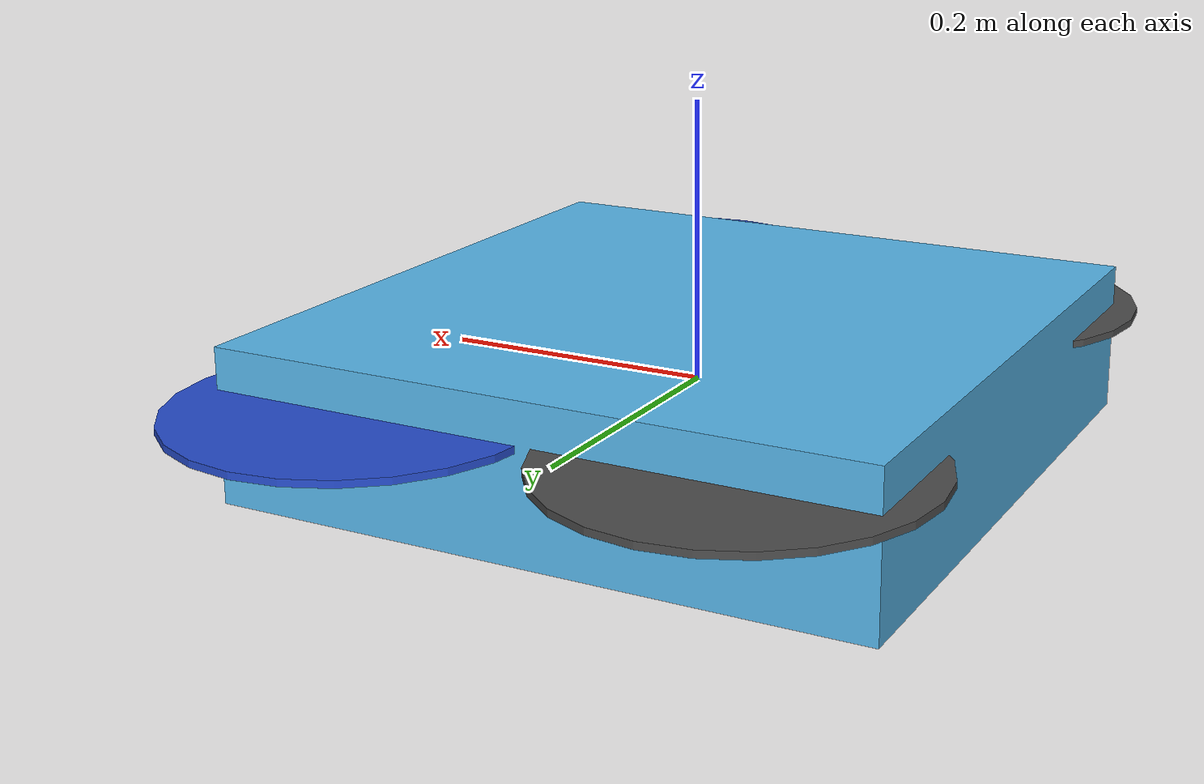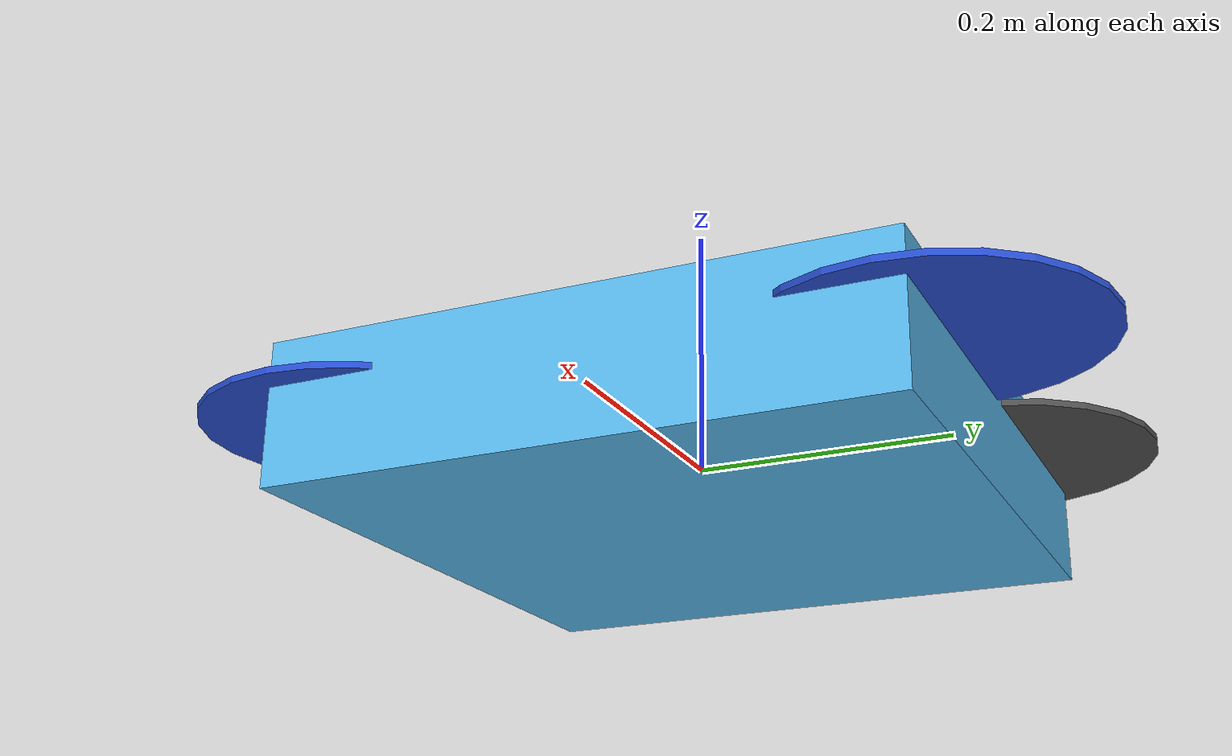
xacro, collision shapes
<?xml version="1.0" ?>
<!-- |    This document was autogenerated by xacro from erl_base.xacro                 | -->
<!-- |    EDITING THIS FILE BY HAND IS NOT RECOMMENDED                                 | -->
<!-- |    This document was autogenerated by xacro from erl_base.xacro                 | -->
<!-- |    EDITING THIS FILE BY HAND IS NOT RECOMMENDED                                 | -->
<robot name="iris" xmlns:xacro="http://ros.org/wiki/xacro">
  <!-- Properties that can be assigned at build time as arguments.
  Is there a reason not to make all properties arguments?
  -->
  <!-- The following causes segfault with multiple vehicles if defaults to true!!! -->
  <!-- macros for gazebo plugins, sensors -->
  <!-- Macro to add logging to a bag file. -->
  <!-- Macro to add a camera. -->
  <!-- Macro to add the controller interface. -->
  <!-- Macro to add the gps_plugin. -->
  <!-- Macro to add the magnetometer_plugin. -->
  <!-- Macro to add the barometer_plugin. -->
  <!-- Macro to add the mavlink interface. -->
  <!-- Macro to add an IMU. -->
  <!-- Macro to add a generic odometry sensor. -->
  <!-- Macro to add the wind plugin. -->
  <!-- VI sensor macros -->
  <!-- Macro to add a VI-sensor camera. -->
  <!-- Macro to add a depth camera on the VI-sensor. -->
  <!-- VI-Sensor Macro -->
  <!-- Instantiate iris "mechanics" -->
  <!-- Properties -->
  <!-- [kg] -->
  <!-- [kg] -->
  <!-- [kg.m/s^2] -->
  <!-- [rad/s] -->
  <!-- Property Blocks -->
  <!-- inertia of a single rotor, assuming it is a cuboid. Height=3mm, width=15mm -->
  <!-- Included URDF Files -->
  <!-- Main multirotor link -->
  <!-- Rotor joint and link -->
  <!-- Instantiate multirotor_base_macro once -->
  <link name="base_link"/>
  <joint name="base_joint" type="fixed">
    <origin rpy="0 0 0" xyz="0 0 0"/>
    <parent link="base_link"/>
    <child link="base_link_inertia"/>
  </joint>
  <link name="base_link_inertia">
    <inertial>
      <mass value="1.5"/>
      <!-- [kg] -->
      <origin xyz="0 0 0"/>
      <inertia ixx="0.029124999999999998" ixy="0.0" ixz="0.0" iyy="0.029124999999999998" iyz="0.0" izz="0.055224999999999996"/>
    </inertial>
    <visual>
      <origin rpy="0 0 0" xyz="0 0 0"/>
      <geometry>
        <mesh filename="model://iris/meshes/iris.stl" scale="1 1 1"/>
      </geometry>
    </visual>
    <collision>
      <origin rpy="0 0 0" xyz="0 0 0"/>
      <geometry>
        <box size="0.47 0.47 0.11"/>
      </geometry>
    </collision>
  </link>
  <!-- attach multirotor_base_plugin to the base_link -->
  <gazebo>
    <plugin filename="libgazebo_multirotor_base_plugin.so" name="rosbag">
      <robotNamespace/>
      <linkName>base_link</linkName>
      <rotorVelocitySlowdownSim>10</rotorVelocitySlowdownSim>
    </plugin>
  </gazebo>
  <gazebo reference="base_link">
    <material>Gazebo/DarkGrey</material>
    <collision name="base_link_inertia_collision">
      <surface>
        <contact>
          <ode>
            <min_depth>0.001</min_depth>
            <max_vel>0.0</max_vel>
          </ode>
        </contact>
        <friction>
          <ode/>
        </friction>
      </surface>
    </collision>
  </gazebo>
  <!-- Instantiate rotors -->
  <joint name="rotor_0_joint" type="continuous">
    <origin rpy="0 0 0" xyz="0.13 -0.22 0.023"/>
    <axis xyz="0 0 1"/>
    <!-- TODO(ff): not currently set because it's not yet supported -->
    <parent link="base_link"/>
    <child link="rotor_0"/>
  </joint>
  <!-- TODO(ff): not currently set because it's not yet supported -->
  <link name="rotor_0">
    <inertial>
      <mass value="0.005"/>
      <!-- [kg] -->
      <inertia ixx="9.75e-07" ixy="0.0" ixz="0.0" iyy="0.0002731041666666666" iyz="0.0" izz="0.0002740041666666667"/>
    </inertial>
    <visual>
      <geometry>
        <mesh filename="model://iris/meshes/iris_prop_ccw.dae" scale="1 1 1"/>
      </geometry>
    </visual>
    <collision>
      <geometry>
        <cylinder length="0.005" radius="0.128"/>
      </geometry>
    </collision>
  </link>
  <gazebo>
    <plugin filename="libgazebo_motor_model.so" name="front_right_motor_model">
      <robotNamespace/>
      <jointName>rotor_0_joint</jointName>
      <linkName>rotor_0</linkName>
      <turningDirection>ccw</turningDirection>
      <timeConstantUp>0.0125</timeConstantUp>
      <timeConstantDown>0.025</timeConstantDown>
      <maxRotVelocity>1100</maxRotVelocity>
      <motorConstant>8.54858e-06</motorConstant>
      <momentConstant>0.06</momentConstant>
      <commandSubTopic>/gazebo/command/motor_speed</commandSubTopic>
      <motorNumber>0</motorNumber>
      <rotorDragCoefficient>0.000806428</rotorDragCoefficient>
      <rollingMomentCoefficient>1e-06</rollingMomentCoefficient>
      <motorSpeedPubTopic>/motor_speed/0</motorSpeedPubTopic>
      <rotorVelocitySlowdownSim>10</rotorVelocitySlowdownSim>
    </plugin>
  </gazebo>
  <gazebo reference="rotor_0">
    <material>Gazebo/Blue</material>
  </gazebo>
  <joint name="rotor_1_joint" type="continuous">
    <origin rpy="0 0 0" xyz="-0.13 0.2 0.023"/>
    <axis xyz="0 0 1"/>
    <!-- TODO(ff): not currently set because it's not yet supported -->
    <parent link="base_link"/>
    <child link="rotor_1"/>
  </joint>
  <!-- TODO(ff): not currently set because it's not yet supported -->
  <link name="rotor_1">
    <inertial>
      <mass value="0.005"/>
      <!-- [kg] -->
      <inertia ixx="9.75e-07" ixy="0.0" ixz="0.0" iyy="0.0002731041666666666" iyz="0.0" izz="0.0002740041666666667"/>
    </inertial>
    <visual>
      <geometry>
        <mesh filename="model://iris/meshes/iris_prop_ccw.dae" scale="1 1 1"/>
      </geometry>
    </visual>
    <collision>
      <geometry>
        <cylinder length="0.005" radius="0.128"/>
      </geometry>
    </collision>
  </link>
  <gazebo>
    <plugin filename="libgazebo_motor_model.so" name="back_left_motor_model">
      <robotNamespace/>
      <jointName>rotor_1_joint</jointName>
      <linkName>rotor_1</linkName>
      <turningDirection>ccw</turningDirection>
      <timeConstantUp>0.0125</timeConstantUp>
      <timeConstantDown>0.025</timeConstantDown>
      <maxRotVelocity>1100</maxRotVelocity>
      <motorConstant>8.54858e-06</motorConstant>
      <momentConstant>0.06</momentConstant>
      <commandSubTopic>/gazebo/command/motor_speed</commandSubTopic>
      <motorNumber>1</motorNumber>
      <rotorDragCoefficient>0.000806428</rotorDragCoefficient>
      <rollingMomentCoefficient>1e-06</rollingMomentCoefficient>
      <motorSpeedPubTopic>/motor_speed/1</motorSpeedPubTopic>
      <rotorVelocitySlowdownSim>10</rotorVelocitySlowdownSim>
    </plugin>
  </gazebo>
  <gazebo reference="rotor_1">
    <material>Gazebo/DarkGrey</material>
  </gazebo>
  <joint name="rotor_2_joint" type="continuous">
    <origin rpy="0 0 0" xyz="0.13 0.22 0.023"/>
    <axis xyz="0 0 1"/>
    <!-- TODO(ff): not currently set because it's not yet supported -->
    <parent link="base_link"/>
    <child link="rotor_2"/>
  </joint>
  <!-- TODO(ff): not currently set because it's not yet supported -->
  <link name="rotor_2">
    <inertial>
      <mass value="0.005"/>
      <!-- [kg] -->
      <inertia ixx="9.75e-07" ixy="0.0" ixz="0.0" iyy="0.0002731041666666666" iyz="0.0" izz="0.0002740041666666667"/>
    </inertial>
    <visual>
      <geometry>
        <mesh filename="model://iris/meshes/iris_prop_cw.dae" scale="1 1 1"/>
      </geometry>
    </visual>
    <collision>
      <geometry>
        <cylinder length="0.005" radius="0.128"/>
      </geometry>
    </collision>
  </link>
  <gazebo>
    <plugin filename="libgazebo_motor_model.so" name="front_left_motor_model">
      <robotNamespace/>
      <jointName>rotor_2_joint</jointName>
      <linkName>rotor_2</linkName>
      <turningDirection>cw</turningDirection>
      <timeConstantUp>0.0125</timeConstantUp>
      <timeConstantDown>0.025</timeConstantDown>
      <maxRotVelocity>1100</maxRotVelocity>
      <motorConstant>8.54858e-06</motorConstant>
      <momentConstant>0.06</momentConstant>
      <commandSubTopic>/gazebo/command/motor_speed</commandSubTopic>
      <motorNumber>2</motorNumber>
      <rotorDragCoefficient>0.000806428</rotorDragCoefficient>
      <rollingMomentCoefficient>1e-06</rollingMomentCoefficient>
      <motorSpeedPubTopic>/motor_speed/2</motorSpeedPubTopic>
      <rotorVelocitySlowdownSim>10</rotorVelocitySlowdownSim>
    </plugin>
  </gazebo>
  <gazebo reference="rotor_2">
    <material>Gazebo/Blue</material>
  </gazebo>
  <joint name="rotor_3_joint" type="continuous">
    <origin rpy="0 0 0" xyz="-0.13 -0.2 0.023"/>
    <axis xyz="0 0 1"/>
    <!-- TODO(ff): not currently set because it's not yet supported -->
    <parent link="base_link"/>
    <child link="rotor_3"/>
  </joint>
  <!-- TODO(ff): not currently set because it's not yet supported -->
  <link name="rotor_3">
    <inertial>
      <mass value="0.005"/>
      <!-- [kg] -->
      <inertia ixx="9.75e-07" ixy="0.0" ixz="0.0" iyy="0.0002731041666666666" iyz="0.0" izz="0.0002740041666666667"/>
    </inertial>
    <visual>
      <geometry>
        <mesh filename="model://iris/meshes/iris_prop_cw.dae" scale="1 1 1"/>
      </geometry>
    </visual>
    <collision>
      <geometry>
        <cylinder length="0.005" radius="0.128"/>
      </geometry>
    </collision>
  </link>
  <gazebo>
    <plugin filename="libgazebo_motor_model.so" name="back_right_motor_model">
      <robotNamespace/>
      <jointName>rotor_3_joint</jointName>
      <linkName>rotor_3</linkName>
      <turningDirection>cw</turningDirection>
      <timeConstantUp>0.0125</timeConstantUp>
      <timeConstantDown>0.025</timeConstantDown>
      <maxRotVelocity>1100</maxRotVelocity>
      <motorConstant>8.54858e-06</motorConstant>
      <momentConstant>0.06</momentConstant>
      <commandSubTopic>/gazebo/command/motor_speed</commandSubTopic>
      <motorNumber>3</motorNumber>
      <rotorDragCoefficient>0.000806428</rotorDragCoefficient>
      <rollingMomentCoefficient>1e-06</rollingMomentCoefficient>
      <motorSpeedPubTopic>/motor_speed/3</motorSpeedPubTopic>
      <rotorVelocitySlowdownSim>10</rotorVelocitySlowdownSim>
    </plugin>
  </gazebo>
  <gazebo reference="rotor_3">
    <material>Gazebo/DarkGrey</material>
  </gazebo>
  <!-- Instantiate gps plugin. -->
  <gazebo>
    <plugin filename="libgazebo_gps_plugin.so" name="gps_plugin">
      <robotNamespace/>
      <gpsNoise>true</gpsNoise>
    </plugin>
  </gazebo>
  <!-- Instantiate magnetometer plugin. -->
  <gazebo>
    <plugin filename="libgazebo_magnetometer_plugin.so" name="magnetometer_plugin">
      <robotNamespace/>
      <pubRate>20</pubRate>
      <noiseDensity>0.0004</noiseDensity>
      <randomWalk>6.4e-06</randomWalk>
      <biasCorrelationTime>600</biasCorrelationTime>
      <magTopic>/mag</magTopic>
    </plugin>
  </gazebo>
  <!-- Instantiate barometer plugin. -->
  <gazebo>
    <plugin filename="libgazebo_barometer_plugin.so" name="barometer_plugin">
      <robotNamespace/>
      <pubRate>10</pubRate>
      <baroTopic>/baro</baroTopic>
    </plugin>
  </gazebo>
  <!-- Instantiate mavlink telemetry interface. -->
  <gazebo>
    <plugin filename="libgazebo_mavlink_interface.so" name="mavlink_interface">
      <robotNamespace/>
      <imuSubTopic>/imu</imuSubTopic>
      <gpsSubTopic>/gps</gpsSubTopic>
      <magSubTopic>/mag</magSubTopic>
      <baroSubTopic>/baro</baroSubTopic>
      <mavlink_addr>INADDR_ANY</mavlink_addr>
      <mavlink_udp_port>14560</mavlink_udp_port>
      <mavlink_tcp_port>4560</mavlink_tcp_port>
      <serialEnabled>false</serialEnabled>
      <serialDevice>/dev/ttyACM0</serialDevice>
      <baudRate>921600</baudRate>
      <qgc_addr>INADDR_ANY</qgc_addr>
      <qgc_udp_port>14550</qgc_udp_port>
      <sdk_addr>INADDR_ANY</sdk_addr>
      <sdk_udp_port>14540</sdk_udp_port>
      <hil_mode>false</hil_mode>
      <hil_state_level>false</hil_state_level>
      <vehicle_is_tailsitter>false</vehicle_is_tailsitter>
      <send_vision_estimation>false</send_vision_estimation>
      <send_odometry>false</send_odometry>
      <enable_lockstep>true</enable_lockstep>
      <use_tcp>true</use_tcp>
      <motorSpeedCommandPubTopic>/gazebo/command/motor_speed</motorSpeedCommandPubTopic>
      <control_channels>
        <channel name="rotor1">
          <input_index>0</input_index>
          <input_offset>0</input_offset>
          <input_scaling>1000</input_scaling>
          <zero_position_disarmed>0</zero_position_disarmed>
          <zero_position_armed>100</zero_position_armed>
          <joint_control_type>velocity</joint_control_type>
        </channel>
        <channel name="rotor2">
          <input_index>1</input_index>
          <input_offset>0</input_offset>
          <input_scaling>1000</input_scaling>
          <zero_position_disarmed>0</zero_position_disarmed>
          <zero_position_armed>100</zero_position_armed>
          <joint_control_type>velocity</joint_control_type>
        </channel>
        <channel name="rotor3">
          <input_index>2</input_index>
          <input_offset>0</input_offset>
          <input_scaling>1000</input_scaling>
          <zero_position_disarmed>0</zero_position_disarmed>
          <zero_position_armed>100</zero_position_armed>
          <joint_control_type>velocity</joint_control_type>
        </channel>
        <channel name="rotor4">
          <input_index>3</input_index>
          <input_offset>0</input_offset>
          <input_scaling>1000</input_scaling>
          <zero_position_disarmed>0</zero_position_disarmed>
          <zero_position_armed>100</zero_position_armed>
          <joint_control_type>velocity</joint_control_type>
        </channel>
        <channel name="rotor5">
          <input_index>4</input_index>
          <input_offset>1</input_offset>
          <input_scaling>324.6</input_scaling>
          <zero_position_disarmed>0</zero_position_disarmed>
          <zero_position_armed>0</zero_position_armed>
          <joint_control_type>velocity</joint_control_type>
          <joint_control_pid>
            <p>0.1</p>
            <i>0</i>
            <d>0</d>
            <iMax>0.0</iMax>
            <iMin>0.0</iMin>
            <cmdMax>2</cmdMax>
            <cmdMin>-2</cmdMin>
          </joint_control_pid>
          <joint_name>zephyr_delta_wing::propeller_joint</joint_name>
        </channel>
        <channel name="rotor6">
          <input_index>5</input_index>
          <input_offset>0</input_offset>
          <!-- joint limits [-0.524, 0.524] -->
          <input_scaling>0.524</input_scaling>
          <zero_position_disarmed>0</zero_position_disarmed>
          <zero_position_armed>0</zero_position_armed>
          <joint_control_type>position</joint_control_type>
          <joint_name>zephyr_delta_wing::flap_left_joint</joint_name>
          <joint_control_pid>
            <p>10.0</p>
            <i>0</i>
            <d>0</d>
            <iMax>0</iMax>
            <iMin>0</iMin>
            <cmdMax>20</cmdMax>
            <cmdMin>-20</cmdMin>
          </joint_control_pid>
        </channel>
        <channel name="rotor7">
          <input_index>6</input_index>
          <input_offset>0</input_offset>
          <!-- joint limits [-0.524, 0.524] -->
          <input_scaling>0.524</input_scaling>
          <zero_position_disarmed>0</zero_position_disarmed>
          <zero_position_armed>0</zero_position_armed>
          <joint_control_type>position</joint_control_type>
          <joint_name>zephyr_delta_wing::flap_right_joint</joint_name>
          <joint_control_pid>
            <p>10.0</p>
            <i>0</i>
            <d>0</d>
            <iMax>0</iMax>
            <iMin>0</iMin>
            <cmdMax>20</cmdMax>
            <cmdMin>-20</cmdMin>
          </joint_control_pid>
        </channel>
        <channel name="rotor8">
          <input_index>7</input_index>
          <input_offset>0</input_offset>
          <input_scaling>0.524</input_scaling>
          <zero_position_disarmed>0</zero_position_disarmed>
          <zero_position_armed>0</zero_position_armed>
          <joint_control_type>position</joint_control_type>
        </channel>
      </control_channels>
    </plugin>
  </gazebo>
  <!-- Mount an ADIS16448 IMU. -->
  <!-- IMU link -->
  <link name="/imu_link">
    <inertial>
      <inertia ixx="0.00001" ixy="0.0" ixz="0.0" iyy="0.00001" iyz="0.0" izz="0.00001"/>
      <mass value="0.015"/>
      <!-- [kg] -->
      <origin rpy="0 0 0" xyz="0 0 0"/>
    </inertial>
  </link>
  <!-- IMU joint -->
  <joint name="/imu_joint" type="revolute">
    <origin rpy="0 0 0" xyz="0 0 0"/>
    <parent link="base_link"/>
    <child link="/imu_link"/>
    <limit effort="0" lower="0" upper="0" velocity="0"/>
  </joint>
  <gazebo>
    <plugin filename="libgazebo_imu_plugin.so" name="rotors_gazebo_imu_plugin">
      <!-- A good description of the IMU parameters can be found in the kalibr documentation:
           https://github.com/ethz-asl/kalibr/wiki/IMU-Noise-Model-and-Intrinsics -->
      <robotNamespace/>
      <!-- (string, required): ros namespace in which the messages are published -->
      <linkName>/imu_link</linkName>
      <!-- (string, required): name of the body which holds the IMU sensor -->
      <imuTopic>/imu</imuTopic>
      <!-- (string): name of the sensor output topic and prefix of service names (defaults to imu) -->
      <gyroscopeNoiseDensity>0.0003394</gyroscopeNoiseDensity>
      <!-- Gyroscope noise density (two-sided spectrum) [rad/s/sqrt(Hz)] -->
      <gyroscopeRandomWalk>3.8785e-05</gyroscopeRandomWalk>
      <!-- Gyroscope bias random walk [rad/s/s/sqrt(Hz)] -->
      <gyroscopeBiasCorrelationTime>1000.0</gyroscopeBiasCorrelationTime>
      <!-- Gyroscope bias correlation time constant [s] -->
      <gyroscopeTurnOnBiasSigma>0.0087</gyroscopeTurnOnBiasSigma>
      <!-- Gyroscope turn on bias standard deviation [rad/s] -->
      <accelerometerNoiseDensity>0.004</accelerometerNoiseDensity>
      <!-- Accelerometer noise density (two-sided spectrum) [m/s^2/sqrt(Hz)] -->
      <accelerometerRandomWalk>0.006</accelerometerRandomWalk>
      <!-- Accelerometer bias random walk. [m/s^2/s/sqrt(Hz)] -->
      <accelerometerBiasCorrelationTime>300.0</accelerometerBiasCorrelationTime>
      <!-- Accelerometer bias correlation time constant [s] -->
      <accelerometerTurnOnBiasSigma>0.196</accelerometerTurnOnBiasSigma>
      <!-- Accelerometer turn on bias standard deviation [m/s^2] -->
    </plugin>
  </gazebo>
</robot>
